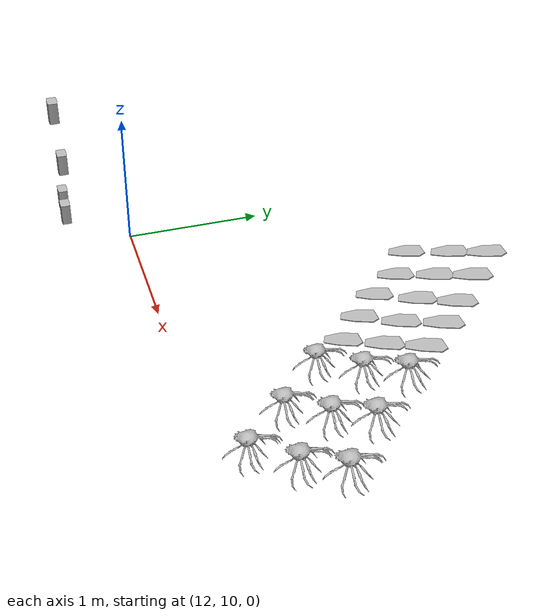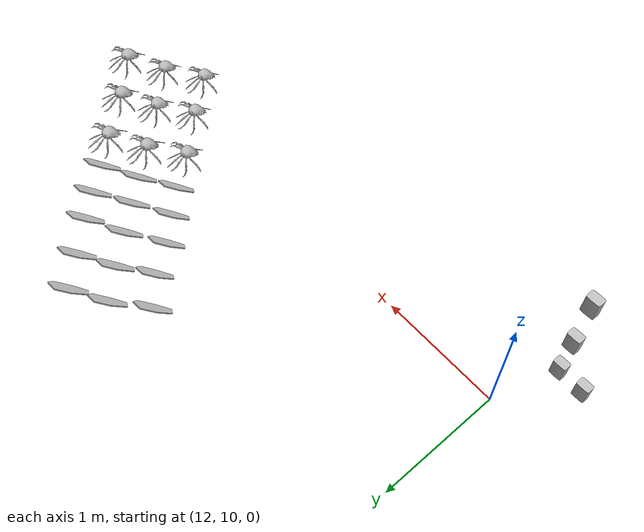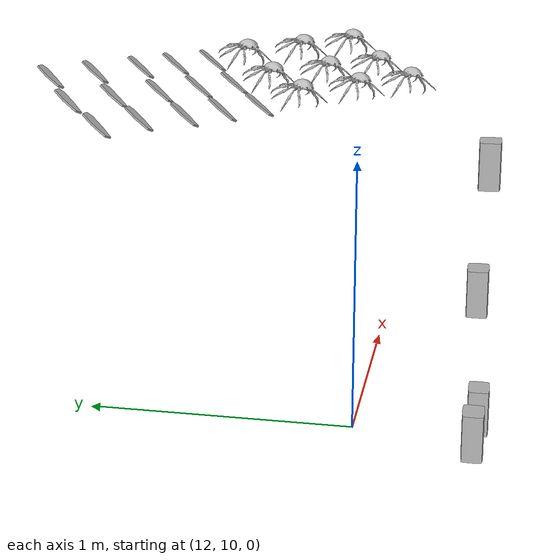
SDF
<sdf version="1.6">
 <world name="default">
  <model name="cod">
   <link name="link_1">
    <inertial>
     <mass>1</mass>
     <inertia>
      <ixx>0.166667</ixx>
      <ixy>0</ixy>
      <ixz>0</ixz>
      <iyy>0.166667</iyy>
      <iyz>0</iyz>
      <izz>0.166667</izz>
     </inertia>
    </inertial>
    <visual name="visual">
     <geometry><mesh><uri>model://cod/meshes/cod.dae</uri><scale>1 1 1</scale></mesh></geometry>
    </visual>
    <collision name="collision">
     <geometry><mesh><uri>model://cod/meshes/cod.dae</uri><scale>1 1 1</scale></mesh></geometry>
     <surface>
      <friction>
       <ode><mu>1</mu><mu2>1</mu2><fdir1>0 0 0</fdir1><slip1>0</slip1><slip2>0</slip2></ode>
       <torsional>
        <coefficient>1</coefficient>
        <patch_radius>0</patch_radius>
        <surface_radius>0</surface_radius>
        <use_patch_radius>1</use_patch_radius>
        <ode><slip>0</slip></ode>
       </torsional>
      </friction>
      <bounce><restitution_coefficient>0</restitution_coefficient><threshold>1e+06</threshold></bounce>
      <contact>
       <collide_without_contact>0</collide_without_contact>
       <collide_without_contact_bitmask>1</collide_without_contact_bitmask>
       <collide_bitmask>1</collide_bitmask>
       <ode>
        <soft_cfm>0</soft_cfm>
        <soft_erp>0.2</soft_erp>
        <kp>1e+13</kp>
        <kd>1</kd>
        <max_vel>0.01</max_vel>
        <min_depth>0</min_depth>
       </ode>
       <bullet>
        <split_impulse>1</split_impulse>
        <split_impulse_penetration_threshold>-0.01</split_impulse_penetration_threshold>
        <soft_cfm>0</soft_cfm>
        <soft_erp>0.2</soft_erp>
        <kp>1e+13</kp>
        <kd>1</kd>
       </bullet>
      </contact>
     </surface>
    </collision>
   </link>
   <static>1</static>
   <pose>14.0109 11.7517 0.843318 0 -0.344885 0.775767</pose>
  </model>
  <model name="cod_clone">
   <link name="link_1">
    <inertial>
     <mass>1</mass>
     <inertia>
      <ixx>0.166667</ixx>
      <ixy>0</ixy>
      <ixz>0</ixz>
      <iyy>0.166667</iyy>
      <iyz>0</iyz>
      <izz>0.166667</izz>
     </inertia>
    </inertial>
    <visual name="visual">
     <geometry><mesh><uri>model://cod/meshes/cod.dae</uri><scale>1 1 1</scale></mesh></geometry>
    </visual>
    <collision name="collision">
     <geometry><mesh><uri>model://cod/meshes/cod.dae</uri><scale>1 1 1</scale></mesh></geometry>
     <surface>
      <friction>
       <ode><mu>1</mu><mu2>1</mu2><fdir1>0 0 0</fdir1><slip1>0</slip1><slip2>0</slip2></ode>
       <torsional>
        <coefficient>1</coefficient>
        <patch_radius>0</patch_radius>
        <surface_radius>0</surface_radius>
        <use_patch_radius>1</use_patch_radius>
        <ode><slip>0</slip></ode>
       </torsional>
      </friction>
      <bounce><restitution_coefficient>0</restitution_coefficient><threshold>1e+06</threshold></bounce>
      <contact>
       <collide_without_contact>0</collide_without_contact>
       <collide_without_contact_bitmask>1</collide_without_contact_bitmask>
       <collide_bitmask>1</collide_bitmask>
       <ode>
        <soft_cfm>0</soft_cfm>
        <soft_erp>0.2</soft_erp>
        <kp>1e+13</kp>
        <kd>1</kd>
        <max_vel>0.01</max_vel>
        <min_depth>0</min_depth>
       </ode>
       <bullet>
        <split_impulse>1</split_impulse>
        <split_impulse_penetration_threshold>-0.01</split_impulse_penetration_threshold>
        <soft_cfm>0</soft_cfm>
        <soft_erp>0.2</soft_erp>
        <kp>1e+13</kp>
        <kd>1</kd>
       </bullet>
      </contact>
     </surface>
    </collision>
   </link>
   <static>1</static>
   <pose>14.2061 11.5664 0.843318 0 -0.344885 0.775767</pose>
  </model>
  <model name="cod_clone_0">
   <link name="link_1">
    <inertial>
     <mass>1</mass>
     <inertia>
      <ixx>0.166667</ixx>
      <ixy>0</ixy>
      <ixz>0</ixz>
      <iyy>0.166667</iyy>
      <iyz>0</iyz>
      <izz>0.166667</izz>
     </inertia>
    </inertial>
    <visual name="visual">
     <geometry><mesh><uri>model://cod/meshes/cod.dae</uri><scale>1 1 1</scale></mesh></geometry>
    </visual>
    <collision name="collision">
     <geometry><mesh><uri>model://cod/meshes/cod.dae</uri><scale>1 1 1</scale></mesh></geometry>
     <surface>
      <friction>
       <ode><mu>1</mu><mu2>1</mu2><fdir1>0 0 0</fdir1><slip1>0</slip1><slip2>0</slip2></ode>
       <torsional>
        <coefficient>1</coefficient>
        <patch_radius>0</patch_radius>
        <surface_radius>0</surface_radius>
        <use_patch_radius>1</use_patch_radius>
        <ode><slip>0</slip></ode>
       </torsional>
      </friction>
      <bounce><restitution_coefficient>0</restitution_coefficient><threshold>1e+06</threshold></bounce>
      <contact>
       <collide_without_contact>0</collide_without_contact>
       <collide_without_contact_bitmask>1</collide_without_contact_bitmask>
       <collide_bitmask>1</collide_bitmask>
       <ode>
        <soft_cfm>0</soft_cfm>
        <soft_erp>0.2</soft_erp>
        <kp>1e+13</kp>
        <kd>1</kd>
        <max_vel>0.01</max_vel>
        <min_depth>0</min_depth>
       </ode>
       <bullet>
        <split_impulse>1</split_impulse>
        <split_impulse_penetration_threshold>-0.01</split_impulse_penetration_threshold>
        <soft_cfm>0</soft_cfm>
        <soft_erp>0.2</soft_erp>
        <kp>1e+13</kp>
        <kd>1</kd>
       </bullet>
      </contact>
     </surface>
    </collision>
   </link>
   <static>1</static>
   <pose>14.3937 11.3707 0.843318 0 -0.344885 0.775767</pose>
  </model>
  <model name="cod_clone_1">
   <link name="link_1">
    <inertial>
     <mass>1</mass>
     <inertia>
      <ixx>0.166667</ixx>
      <ixy>0</ixy>
      <ixz>0</ixz>
      <iyy>0.166667</iyy>
      <iyz>0</iyz>
      <izz>0.166667</izz>
     </inertia>
    </inertial>
    <visual name="visual">
     <geometry><mesh><uri>model://cod/meshes/cod.dae</uri><scale>1 1 1</scale></mesh></geometry>
    </visual>
    <collision name="collision">
     <geometry><mesh><uri>model://cod/meshes/cod.dae</uri><scale>1 1 1</scale></mesh></geometry>
     <surface>
      <friction>
       <ode><mu>1</mu><mu2>1</mu2><fdir1>0 0 0</fdir1><slip1>0</slip1><slip2>0</slip2></ode>
       <torsional>
        <coefficient>1</coefficient>
        <patch_radius>0</patch_radius>
        <surface_radius>0</surface_radius>
        <use_patch_radius>1</use_patch_radius>
        <ode><slip>0</slip></ode>
       </torsional>
      </friction>
      <bounce><restitution_coefficient>0</restitution_coefficient><threshold>1e+06</threshold></bounce>
      <contact>
       <collide_without_contact>0</collide_without_contact>
       <collide_without_contact_bitmask>1</collide_without_contact_bitmask>
       <collide_bitmask>1</collide_bitmask>
       <ode>
        <soft_cfm>0</soft_cfm>
        <soft_erp>0.2</soft_erp>
        <kp>1e+13</kp>
        <kd>1</kd>
        <max_vel>0.01</max_vel>
        <min_depth>0</min_depth>
       </ode>
       <bullet>
        <split_impulse>1</split_impulse>
        <split_impulse_penetration_threshold>-0.01</split_impulse_penetration_threshold>
        <soft_cfm>0</soft_cfm>
        <soft_erp>0.2</soft_erp>
        <kp>1e+13</kp>
        <kd>1</kd>
       </bullet>
      </contact>
     </surface>
    </collision>
   </link>
   <static>1</static>
   <pose>14.5648 11.1946 0.843318 0 -0.344885 0.775767</pose>
  </model>
  <model name="cod_clone_2">
   <link name="link_1">
    <inertial>
     <mass>1</mass>
     <inertia>
      <ixx>0.166667</ixx>
      <ixy>0</ixy>
      <ixz>0</ixz>
      <iyy>0.166667</iyy>
      <iyz>0</iyz>
      <izz>0.166667</izz>
     </inertia>
    </inertial>
    <visual name="visual">
     <geometry><mesh><uri>model://cod/meshes/cod.dae</uri><scale>1 1 1</scale></mesh></geometry>
    </visual>
    <collision name="collision">
     <geometry><mesh><uri>model://cod/meshes/cod.dae</uri><scale>1 1 1</scale></mesh></geometry>
     <surface>
      <friction>
       <ode><mu>1</mu><mu2>1</mu2><fdir1>0 0 0</fdir1><slip1>0</slip1><slip2>0</slip2></ode>
       <torsional>
        <coefficient>1</coefficient>
        <patch_radius>0</patch_radius>
        <surface_radius>0</surface_radius>
        <use_patch_radius>1</use_patch_radius>
        <ode><slip>0</slip></ode>
       </torsional>
      </friction>
      <bounce><restitution_coefficient>0</restitution_coefficient><threshold>1e+06</threshold></bounce>
      <contact>
       <collide_without_contact>0</collide_without_contact>
       <collide_without_contact_bitmask>1</collide_without_contact_bitmask>
       <collide_bitmask>1</collide_bitmask>
       <ode>
        <soft_cfm>0</soft_cfm>
        <soft_erp>0.2</soft_erp>
        <kp>1e+13</kp>
        <kd>1</kd>
        <max_vel>0.01</max_vel>
        <min_depth>0</min_depth>
       </ode>
       <bullet>
        <split_impulse>1</split_impulse>
        <split_impulse_penetration_threshold>-0.01</split_impulse_penetration_threshold>
        <soft_cfm>0</soft_cfm>
        <soft_erp>0.2</soft_erp>
        <kp>1e+13</kp>
        <kd>1</kd>
       </bullet>
      </contact>
     </surface>
    </collision>
   </link>
   <static>1</static>
   <pose>14.722 11.0301 0.843318 0 -0.344885 0.775767</pose>
  </model>
  <model name="cod_clone_3">
   <link name="link_1">
    <inertial>
     <mass>1</mass>
     <inertia>
      <ixx>0.166667</ixx>
      <ixy>0</ixy>
      <ixz>0</ixz>
      <iyy>0.166667</iyy>
      <iyz>0</iyz>
      <izz>0.166667</izz>
     </inertia>
    </inertial>
    <visual name="visual">
     <geometry><mesh><uri>model://cod/meshes/cod.dae</uri><scale>1 1 1</scale></mesh></geometry>
    </visual>
    <collision name="collision">
     <geometry><mesh><uri>model://cod/meshes/cod.dae</uri><scale>1 1 1</scale></mesh></geometry>
     <surface>
      <friction>
       <ode><mu>1</mu><mu2>1</mu2><fdir1>0 0 0</fdir1><slip1>0</slip1><slip2>0</slip2></ode>
       <torsional>
        <coefficient>1</coefficient>
        <patch_radius>0</patch_radius>
        <surface_radius>0</surface_radius>
        <use_patch_radius>1</use_patch_radius>
        <ode><slip>0</slip></ode>
       </torsional>
      </friction>
      <bounce><restitution_coefficient>0</restitution_coefficient><threshold>1e+06</threshold></bounce>
      <contact>
       <collide_without_contact>0</collide_without_contact>
       <collide_without_contact_bitmask>1</collide_without_contact_bitmask>
       <collide_bitmask>1</collide_bitmask>
       <ode>
        <soft_cfm>0</soft_cfm>
        <soft_erp>0.2</soft_erp>
        <kp>1e+13</kp>
        <kd>1</kd>
        <max_vel>0.01</max_vel>
        <min_depth>0</min_depth>
       </ode>
       <bullet>
        <split_impulse>1</split_impulse>
        <split_impulse_penetration_threshold>-0.01</split_impulse_penetration_threshold>
        <soft_cfm>0</soft_cfm>
        <soft_erp>0.2</soft_erp>
        <kp>1e+13</kp>
        <kd>1</kd>
       </bullet>
      </contact>
     </surface>
    </collision>
   </link>
   <static>1</static>
   <pose>14.5904 11.5246 0.936697 0 -0.344885 0.775767</pose>
  </model>
  <model name="cod_clone_3_clone">
   <link name="link_1">
    <inertial>
     <mass>1</mass>
     <inertia>
      <ixx>0.166667</ixx>
      <ixy>0</ixy>
      <ixz>0</ixz>
      <iyy>0.166667</iyy>
      <iyz>0</iyz>
      <izz>0.166667</izz>
     </inertia>
    </inertial>
    <visual name="visual">
     <geometry><mesh><uri>model://cod/meshes/cod.dae</uri><scale>1 1 1</scale></mesh></geometry>
    </visual>
    <collision name="collision">
     <geometry><mesh><uri>model://cod/meshes/cod.dae</uri><scale>1 1 1</scale></mesh></geometry>
     <surface>
      <friction>
       <ode><mu>1</mu><mu2>1</mu2><fdir1>0 0 0</fdir1><slip1>0</slip1><slip2>0</slip2></ode>
       <torsional>
        <coefficient>1</coefficient>
        <patch_radius>0</patch_radius>
        <surface_radius>0</surface_radius>
        <use_patch_radius>1</use_patch_radius>
        <ode><slip>0</slip></ode>
       </torsional>
      </friction>
      <bounce><restitution_coefficient>0</restitution_coefficient><threshold>1e+06</threshold></bounce>
      <contact>
       <collide_without_contact>0</collide_without_contact>
       <collide_without_contact_bitmask>1</collide_without_contact_bitmask>
       <collide_bitmask>1</collide_bitmask>
       <ode>
        <soft_cfm>0</soft_cfm>
        <soft_erp>0.2</soft_erp>
        <kp>1e+13</kp>
        <kd>1</kd>
        <max_vel>0.01</max_vel>
        <min_depth>0</min_depth>
       </ode>
       <bullet>
        <split_impulse>1</split_impulse>
        <split_impulse_penetration_threshold>-0.01</split_impulse_penetration_threshold>
        <soft_cfm>0</soft_cfm>
        <soft_erp>0.2</soft_erp>
        <kp>1e+13</kp>
        <kd>1</kd>
       </bullet>
      </contact>
     </surface>
    </collision>
   </link>
   <static>1</static>
   <pose>14.7478 11.3675 0.936697 0 -0.344885 0.775767</pose>
  </model>
  <model name="cod_clone_3_clone_0">
   <link name="link_1">
    <inertial>
     <mass>1</mass>
     <inertia>
      <ixx>0.166667</ixx>
      <ixy>0</ixy>
      <ixz>0</ixz>
      <iyy>0.166667</iyy>
      <iyz>0</iyz>
      <izz>0.166667</izz>
     </inertia>
    </inertial>
    <visual name="visual">
     <geometry><mesh><uri>model://cod/meshes/cod.dae</uri><scale>1 1 1</scale></mesh></geometry>
    </visual>
    <collision name="collision">
     <geometry><mesh><uri>model://cod/meshes/cod.dae</uri><scale>1 1 1</scale></mesh></geometry>
     <surface>
      <friction>
       <ode><mu>1</mu><mu2>1</mu2><fdir1>0 0 0</fdir1><slip1>0</slip1><slip2>0</slip2></ode>
       <torsional>
        <coefficient>1</coefficient>
        <patch_radius>0</patch_radius>
        <surface_radius>0</surface_radius>
        <use_patch_radius>1</use_patch_radius>
        <ode><slip>0</slip></ode>
       </torsional>
      </friction>
      <bounce><restitution_coefficient>0</restitution_coefficient><threshold>1e+06</threshold></bounce>
      <contact>
       <collide_without_contact>0</collide_without_contact>
       <collide_without_contact_bitmask>1</collide_without_contact_bitmask>
       <collide_bitmask>1</collide_bitmask>
       <ode>
        <soft_cfm>0</soft_cfm>
        <soft_erp>0.2</soft_erp>
        <kp>1e+13</kp>
        <kd>1</kd>
        <max_vel>0.01</max_vel>
        <min_depth>0</min_depth>
       </ode>
       <bullet>
        <split_impulse>1</split_impulse>
        <split_impulse_penetration_threshold>-0.01</split_impulse_penetration_threshold>
        <soft_cfm>0</soft_cfm>
        <soft_erp>0.2</soft_erp>
        <kp>1e+13</kp>
        <kd>1</kd>
       </bullet>
      </contact>
     </surface>
    </collision>
   </link>
   <static>1</static>
   <pose>14.9048 11.192 0.936697 0 -0.344885 0.775767</pose>
  </model>
  <model name="cod_clone_3_clone_1">
   <link name="link_1">
    <inertial>
     <mass>1</mass>
     <inertia>
      <ixx>0.166667</ixx>
      <ixy>0</ixy>
      <ixz>0</ixz>
      <iyy>0.166667</iyy>
      <iyz>0</iyz>
      <izz>0.166667</izz>
     </inertia>
    </inertial>
    <visual name="visual">
     <geometry><mesh><uri>model://cod/meshes/cod.dae</uri><scale>1 1 1</scale></mesh></geometry>
    </visual>
    <collision name="collision">
     <geometry><mesh><uri>model://cod/meshes/cod.dae</uri><scale>1 1 1</scale></mesh></geometry>
     <surface>
      <friction>
       <ode><mu>1</mu><mu2>1</mu2><fdir1>0 0 0</fdir1><slip1>0</slip1><slip2>0</slip2></ode>
       <torsional>
        <coefficient>1</coefficient>
        <patch_radius>0</patch_radius>
        <surface_radius>0</surface_radius>
        <use_patch_radius>1</use_patch_radius>
        <ode><slip>0</slip></ode>
       </torsional>
      </friction>
      <bounce><restitution_coefficient>0</restitution_coefficient><threshold>1e+06</threshold></bounce>
      <contact>
       <collide_without_contact>0</collide_without_contact>
       <collide_without_contact_bitmask>1</collide_without_contact_bitmask>
       <collide_bitmask>1</collide_bitmask>
       <ode>
        <soft_cfm>0</soft_cfm>
        <soft_erp>0.2</soft_erp>
        <kp>1e+13</kp>
        <kd>1</kd>
        <max_vel>0.01</max_vel>
        <min_depth>0</min_depth>
       </ode>
       <bullet>
        <split_impulse>1</split_impulse>
        <split_impulse_penetration_threshold>-0.01</split_impulse_penetration_threshold>
        <soft_cfm>0</soft_cfm>
        <soft_erp>0.2</soft_erp>
        <kp>1e+13</kp>
        <kd>1</kd>
       </bullet>
      </contact>
     </surface>
    </collision>
   </link>
   <static>1</static>
   <pose>14.3832 11.72 0.936697 0 -0.344885 0.775767</pose>
  </model>
  <model name="cod_clone_3_clone_2">
   <link name="link_1">
    <inertial>
     <mass>1</mass>
     <inertia>
      <ixx>0.166667</ixx>
      <ixy>0</ixy>
      <ixz>0</ixz>
      <iyy>0.166667</iyy>
      <iyz>0</iyz>
      <izz>0.166667</izz>
     </inertia>
    </inertial>
    <visual name="visual">
     <geometry><mesh><uri>model://cod/meshes/cod.dae</uri><scale>1 1 1</scale></mesh></geometry>
    </visual>
    <collision name="collision">
     <geometry><mesh><uri>model://cod/meshes/cod.dae</uri><scale>1 1 1</scale></mesh></geometry>
     <surface>
      <friction>
       <ode><mu>1</mu><mu2>1</mu2><fdir1>0 0 0</fdir1><slip1>0</slip1><slip2>0</slip2></ode>
       <torsional>
        <coefficient>1</coefficient>
        <patch_radius>0</patch_radius>
        <surface_radius>0</surface_radius>
        <use_patch_radius>1</use_patch_radius>
        <ode><slip>0</slip></ode>
       </torsional>
      </friction>
      <bounce><restitution_coefficient>0</restitution_coefficient><threshold>1e+06</threshold></bounce>
      <contact>
       <collide_without_contact>0</collide_without_contact>
       <collide_without_contact_bitmask>1</collide_without_contact_bitmask>
       <collide_bitmask>1</collide_bitmask>
       <ode>
        <soft_cfm>0</soft_cfm>
        <soft_erp>0.2</soft_erp>
        <kp>1e+13</kp>
        <kd>1</kd>
        <max_vel>0.01</max_vel>
        <min_depth>0</min_depth>
       </ode>
       <bullet>
        <split_impulse>1</split_impulse>
        <split_impulse_penetration_threshold>-0.01</split_impulse_penetration_threshold>
        <soft_cfm>0</soft_cfm>
        <soft_erp>0.2</soft_erp>
        <kp>1e+13</kp>
        <kd>1</kd>
       </bullet>
      </contact>
     </surface>
    </collision>
   </link>
   <static>1</static>
   <pose>14.1915 11.9034 0.936697 0 -0.344885 0.775767</pose>
  </model>
  <model name="cod_clone_3_clone_3">
   <link name="link_1">
    <inertial>
     <mass>1</mass>
     <inertia>
      <ixx>0.166667</ixx>
      <ixy>0</ixy>
      <ixz>0</ixz>
      <iyy>0.166667</iyy>
      <iyz>0</iyz>
      <izz>0.166667</izz>
     </inertia>
    </inertial>
    <visual name="visual">
     <geometry><mesh><uri>model://cod/meshes/cod.dae</uri><scale>1 1 1</scale></mesh></geometry>
    </visual>
    <collision name="collision">
     <geometry><mesh><uri>model://cod/meshes/cod.dae</uri><scale>1 1 1</scale></mesh></geometry>
     <surface>
      <friction>
       <ode><mu>1</mu><mu2>1</mu2><fdir1>0 0 0</fdir1><slip1>0</slip1><slip2>0</slip2></ode>
       <torsional>
        <coefficient>1</coefficient>
        <patch_radius>0</patch_radius>
        <surface_radius>0</surface_radius>
        <use_patch_radius>1</use_patch_radius>
        <ode><slip>0</slip></ode>
       </torsional>
      </friction>
      <bounce><restitution_coefficient>0</restitution_coefficient><threshold>1e+06</threshold></bounce>
      <contact>
       <collide_without_contact>0</collide_without_contact>
       <collide_without_contact_bitmask>1</collide_without_contact_bitmask>
       <collide_bitmask>1</collide_bitmask>
       <ode>
        <soft_cfm>0</soft_cfm>
        <soft_erp>0.2</soft_erp>
        <kp>1e+13</kp>
        <kd>1</kd>
        <max_vel>0.01</max_vel>
        <min_depth>0</min_depth>
       </ode>
       <bullet>
        <split_impulse>1</split_impulse>
        <split_impulse_penetration_threshold>-0.01</split_impulse_penetration_threshold>
        <soft_cfm>0</soft_cfm>
        <soft_erp>0.2</soft_erp>
        <kp>1e+13</kp>
        <kd>1</kd>
       </bullet>
      </contact>
     </surface>
    </collision>
   </link>
   <static>1</static>
   <pose>14.0362 11.3849 0.760374 0 -0.344885 0.775767</pose>
  </model>
  <model name="cod_clone_3_clone_3_clone">
   <link name="link_1">
    <inertial>
     <mass>1</mass>
     <inertia>
      <ixx>0.166667</ixx>
      <ixy>0</ixy>
      <ixz>0</ixz>
      <iyy>0.166667</iyy>
      <iyz>0</iyz>
      <izz>0.166667</izz>
     </inertia>
    </inertial>
    <visual name="visual">
     <geometry><mesh><uri>model://cod/meshes/cod.dae</uri><scale>1 1 1</scale></mesh></geometry>
    </visual>
    <collision name="collision">
     <geometry><mesh><uri>model://cod/meshes/cod.dae</uri><scale>1 1 1</scale></mesh></geometry>
     <surface>
      <friction>
       <ode><mu>1</mu><mu2>1</mu2><fdir1>0 0 0</fdir1><slip1>0</slip1><slip2>0</slip2></ode>
       <torsional>
        <coefficient>1</coefficient>
        <patch_radius>0</patch_radius>
        <surface_radius>0</surface_radius>
        <use_patch_radius>1</use_patch_radius>
        <ode><slip>0</slip></ode>
       </torsional>
      </friction>
      <bounce><restitution_coefficient>0</restitution_coefficient><threshold>1e+06</threshold></bounce>
      <contact>
       <collide_without_contact>0</collide_without_contact>
       <collide_without_contact_bitmask>1</collide_without_contact_bitmask>
       <collide_bitmask>1</collide_bitmask>
       <ode>
        <soft_cfm>0</soft_cfm>
        <soft_erp>0.2</soft_erp>
        <kp>1e+13</kp>
        <kd>1</kd>
        <max_vel>0.01</max_vel>
        <min_depth>0</min_depth>
       </ode>
       <bullet>
        <split_impulse>1</split_impulse>
        <split_impulse_penetration_threshold>-0.01</split_impulse_penetration_threshold>
        <soft_cfm>0</soft_cfm>
        <soft_erp>0.2</soft_erp>
        <kp>1e+13</kp>
        <kd>1</kd>
       </bullet>
      </contact>
     </surface>
    </collision>
   </link>
   <static>1</static>
   <pose>14.188 11.1847 0.760374 0 -0.344885 0.775767</pose>
  </model>
  <model name="cod_clone_3_clone_3_clone_0">
   <link name="link_1">
    <inertial>
     <mass>1</mass>
     <inertia>
      <ixx>0.166667</ixx>
      <ixy>0</ixy>
      <ixz>0</ixz>
      <iyy>0.166667</iyy>
      <iyz>0</iyz>
      <izz>0.166667</izz>
     </inertia>
    </inertial>
    <visual name="visual">
     <geometry><mesh><uri>model://cod/meshes/cod.dae</uri><scale>1 1 1</scale></mesh></geometry>
    </visual>
    <collision name="collision">
     <geometry><mesh><uri>model://cod/meshes/cod.dae</uri><scale>1 1 1</scale></mesh></geometry>
     <surface>
      <friction>
       <ode><mu>1</mu><mu2>1</mu2><fdir1>0 0 0</fdir1><slip1>0</slip1><slip2>0</slip2></ode>
       <torsional>
        <coefficient>1</coefficient>
        <patch_radius>0</patch_radius>
        <surface_radius>0</surface_radius>
        <use_patch_radius>1</use_patch_radius>
        <ode><slip>0</slip></ode>
       </torsional>
      </friction>
      <bounce><restitution_coefficient>0</restitution_coefficient><threshold>1e+06</threshold></bounce>
      <contact>
       <collide_without_contact>0</collide_without_contact>
       <collide_without_contact_bitmask>1</collide_without_contact_bitmask>
       <collide_bitmask>1</collide_bitmask>
       <ode>
        <soft_cfm>0</soft_cfm>
        <soft_erp>0.2</soft_erp>
        <kp>1e+13</kp>
        <kd>1</kd>
        <max_vel>0.01</max_vel>
        <min_depth>0</min_depth>
       </ode>
       <bullet>
        <split_impulse>1</split_impulse>
        <split_impulse_penetration_threshold>-0.01</split_impulse_penetration_threshold>
        <soft_cfm>0</soft_cfm>
        <soft_erp>0.2</soft_erp>
        <kp>1e+13</kp>
        <kd>1</kd>
       </bullet>
      </contact>
     </surface>
    </collision>
   </link>
   <static>1</static>
   <pose>14.3626 11.0209 0.760374 0 -0.344885 0.775767</pose>
  </model>
  <model name="cod_clone_3_clone_3_clone_1">
   <link name="link_1">
    <inertial>
     <mass>1</mass>
     <inertia>
      <ixx>0.166667</ixx>
      <ixy>0</ixy>
      <ixz>0</ixz>
      <iyy>0.166667</iyy>
      <iyz>0</iyz>
      <izz>0.166667</izz>
     </inertia>
    </inertial>
    <visual name="visual">
     <geometry><mesh><uri>model://cod/meshes/cod.dae</uri><scale>1 1 1</scale></mesh></geometry>
    </visual>
    <collision name="collision">
     <geometry><mesh><uri>model://cod/meshes/cod.dae</uri><scale>1 1 1</scale></mesh></geometry>
     <surface>
      <friction>
       <ode><mu>1</mu><mu2>1</mu2><fdir1>0 0 0</fdir1><slip1>0</slip1><slip2>0</slip2></ode>
       <torsional>
        <coefficient>1</coefficient>
        <patch_radius>0</patch_radius>
        <surface_radius>0</surface_radius>
        <use_patch_radius>1</use_patch_radius>
        <ode><slip>0</slip></ode>
       </torsional>
      </friction>
      <bounce><restitution_coefficient>0</restitution_coefficient><threshold>1e+06</threshold></bounce>
      <contact>
       <collide_without_contact>0</collide_without_contact>
       <collide_without_contact_bitmask>1</collide_without_contact_bitmask>
       <collide_bitmask>1</collide_bitmask>
       <ode>
        <soft_cfm>0</soft_cfm>
        <soft_erp>0.2</soft_erp>
        <kp>1e+13</kp>
        <kd>1</kd>
        <max_vel>0.01</max_vel>
        <min_depth>0</min_depth>
       </ode>
       <bullet>
        <split_impulse>1</split_impulse>
        <split_impulse_penetration_threshold>-0.01</split_impulse_penetration_threshold>
        <soft_cfm>0</soft_cfm>
        <soft_erp>0.2</soft_erp>
        <kp>1e+13</kp>
        <kd>1</kd>
       </bullet>
      </contact>
     </surface>
    </collision>
   </link>
   <static>1</static>
   <pose>14.5373 10.8545 0.760374 0 -0.344885 0.775767</pose>
  </model>
  <model name="cod_clone_3_clone_3_clone_2">
   <link name="link_1">
    <inertial>
     <mass>1</mass>
     <inertia>
      <ixx>0.166667</ixx>
      <ixy>0</ixy>
      <ixz>0</ixz>
      <iyy>0.166667</iyy>
      <iyz>0</iyz>
      <izz>0.166667</izz>
     </inertia>
    </inertial>
    <visual name="visual">
     <geometry><mesh><uri>model://cod/meshes/cod.dae</uri><scale>1 1 1</scale></mesh></geometry>
    </visual>
    <collision name="collision">
     <geometry><mesh><uri>model://cod/meshes/cod.dae</uri><scale>1 1 1</scale></mesh></geometry>
     <surface>
      <friction>
       <ode><mu>1</mu><mu2>1</mu2><fdir1>0 0 0</fdir1><slip1>0</slip1><slip2>0</slip2></ode>
       <torsional>
        <coefficient>1</coefficient>
        <patch_radius>0</patch_radius>
        <surface_radius>0</surface_radius>
        <use_patch_radius>1</use_patch_radius>
        <ode><slip>0</slip></ode>
       </torsional>
      </friction>
      <bounce><restitution_coefficient>0</restitution_coefficient><threshold>1e+06</threshold></bounce>
      <contact>
       <collide_without_contact>0</collide_without_contact>
       <collide_without_contact_bitmask>1</collide_without_contact_bitmask>
       <collide_bitmask>1</collide_bitmask>
       <ode>
        <soft_cfm>0</soft_cfm>
        <soft_erp>0.2</soft_erp>
        <kp>1e+13</kp>
        <kd>1</kd>
        <max_vel>0.01</max_vel>
        <min_depth>0</min_depth>
       </ode>
       <bullet>
        <split_impulse>1</split_impulse>
        <split_impulse_penetration_threshold>-0.01</split_impulse_penetration_threshold>
        <soft_cfm>0</soft_cfm>
        <soft_erp>0.2</soft_erp>
        <kp>1e+13</kp>
        <kd>1</kd>
       </bullet>
      </contact>
     </surface>
    </collision>
   </link>
   <static>1</static>
   <pose>13.8275 11.5452 0.760374 0 -0.344885 0.775767</pose>
  </model>
  <model name="crab">
   <link name="link_3">
    <inertial>
     <mass>1</mass>
     <inertia>
      <ixx>0.166667</ixx>
      <ixy>0</ixy>
      <ixz>0</ixz>
      <iyy>0.166667</iyy>
      <iyz>0</iyz>
      <izz>0.166667</izz>
     </inertia>
    </inertial>
    <visual name="visual">
     <geometry><mesh><uri>model://crab/meshes/crab.dae</uri><scale>1 1 1</scale></mesh></geometry>
    </visual>
    <collision name="collision">
     <geometry><mesh><uri>model://crab/meshes/crab.dae</uri><scale>1 1 1</scale></mesh></geometry>
     <surface>
      <friction>
       <ode><mu>1</mu><mu2>1</mu2><fdir1>0 0 0</fdir1><slip1>0</slip1><slip2>0</slip2></ode>
       <torsional>
        <coefficient>1</coefficient>
        <patch_radius>0</patch_radius>
        <surface_radius>0</surface_radius>
        <use_patch_radius>1</use_patch_radius>
        <ode><slip>0</slip></ode>
       </torsional>
      </friction>
      <bounce><restitution_coefficient>0</restitution_coefficient><threshold>1e+06</threshold></bounce>
      <contact>
       <collide_without_contact>0</collide_without_contact>
       <collide_without_contact_bitmask>1</collide_without_contact_bitmask>
       <collide_bitmask>1</collide_bitmask>
       <ode>
        <soft_cfm>0</soft_cfm>
        <soft_erp>0.2</soft_erp>
        <kp>1e+13</kp>
        <kd>1</kd>
        <max_vel>0.01</max_vel>
        <min_depth>0</min_depth>
       </ode>
       <bullet>
        <split_impulse>1</split_impulse>
        <split_impulse_penetration_threshold>-0.01</split_impulse_penetration_threshold>
        <soft_cfm>0</soft_cfm>
        <soft_erp>0.2</soft_erp>
        <kp>1e+13</kp>
        <kd>1</kd>
       </bullet>
      </contact>
     </surface>
    </collision>
   </link>
   <static>1</static>
   <pose>14.587 10.7623 0.739129 0 0.295362 -2.32577</pose>
  </model>
  <model name="crab_clone">
   <link name="link_3">
    <inertial>
     <mass>1</mass>
     <inertia>
      <ixx>0.166667</ixx>
      <ixy>0</ixy>
      <ixz>0</ixz>
      <iyy>0.166667</iyy>
      <iyz>0</iyz>
      <izz>0.166667</izz>
     </inertia>
    </inertial>
    <visual name="visual">
     <geometry><mesh><uri>model://crab/meshes/crab.dae</uri><scale>1 1 1</scale></mesh></geometry>
    </visual>
    <collision name="collision">
     <geometry><mesh><uri>model://crab/meshes/crab.dae</uri><scale>1 1 1</scale></mesh></geometry>
     <surface>
      <friction>
       <ode><mu>1</mu><mu2>1</mu2><fdir1>0 0 0</fdir1><slip1>0</slip1><slip2>0</slip2></ode>
       <torsional>
        <coefficient>1</coefficient>
        <patch_radius>0</patch_radius>
        <surface_radius>0</surface_radius>
        <use_patch_radius>1</use_patch_radius>
        <ode><slip>0</slip></ode>
       </torsional>
      </friction>
      <bounce><restitution_coefficient>0</restitution_coefficient><threshold>1e+06</threshold></bounce>
      <contact>
       <collide_without_contact>0</collide_without_contact>
       <collide_without_contact_bitmask>1</collide_without_contact_bitmask>
       <collide_bitmask>1</collide_bitmask>
       <ode>
        <soft_cfm>0</soft_cfm>
        <soft_erp>0.2</soft_erp>
        <kp>1e+13</kp>
        <kd>1</kd>
        <max_vel>0.01</max_vel>
        <min_depth>0</min_depth>
       </ode>
       <bullet>
        <split_impulse>1</split_impulse>
        <split_impulse_penetration_threshold>-0.01</split_impulse_penetration_threshold>
        <soft_cfm>0</soft_cfm>
        <soft_erp>0.2</soft_erp>
        <kp>1e+13</kp>
        <kd>1</kd>
       </bullet>
      </contact>
     </surface>
    </collision>
   </link>
   <static>1</static>
   <pose>14.8754 10.4809 0.739129 0 0.295362 -2.32577</pose>
  </model>
  <model name="crab_clone_0">
   <link name="link_3">
    <inertial>
     <mass>1</mass>
     <inertia>
      <ixx>0.166667</ixx>
      <ixy>0</ixy>
      <ixz>0</ixz>
      <iyy>0.166667</iyy>
      <iyz>0</iyz>
      <izz>0.166667</izz>
     </inertia>
    </inertial>
    <visual name="visual">
     <geometry><mesh><uri>model://crab/meshes/crab.dae</uri><scale>1 1 1</scale></mesh></geometry>
    </visual>
    <collision name="collision">
     <geometry><mesh><uri>model://crab/meshes/crab.dae</uri><scale>1 1 1</scale></mesh></geometry>
     <surface>
      <friction>
       <ode><mu>1</mu><mu2>1</mu2><fdir1>0 0 0</fdir1><slip1>0</slip1><slip2>0</slip2></ode>
       <torsional>
        <coefficient>1</coefficient>
        <patch_radius>0</patch_radius>
        <surface_radius>0</surface_radius>
        <use_patch_radius>1</use_patch_radius>
        <ode><slip>0</slip></ode>
       </torsional>
      </friction>
      <bounce><restitution_coefficient>0</restitution_coefficient><threshold>1e+06</threshold></bounce>
      <contact>
       <collide_without_contact>0</collide_without_contact>
       <collide_without_contact_bitmask>1</collide_without_contact_bitmask>
       <collide_bitmask>1</collide_bitmask>
       <ode>
        <soft_cfm>0</soft_cfm>
        <soft_erp>0.2</soft_erp>
        <kp>1e+13</kp>
        <kd>1</kd>
        <max_vel>0.01</max_vel>
        <min_depth>0</min_depth>
       </ode>
       <bullet>
        <split_impulse>1</split_impulse>
        <split_impulse_penetration_threshold>-0.01</split_impulse_penetration_threshold>
        <soft_cfm>0</soft_cfm>
        <soft_erp>0.2</soft_erp>
        <kp>1e+13</kp>
        <kd>1</kd>
       </bullet>
      </contact>
     </surface>
    </collision>
   </link>
   <static>1</static>
   <pose>15.1264 10.2106 0.739129 0 0.295362 -2.32577</pose>
  </model>
  <model name="crab_clone_1">
   <link name="link_3">
    <inertial>
     <mass>1</mass>
     <inertia>
      <ixx>0.166667</ixx>
      <ixy>0</ixy>
      <ixz>0</ixz>
      <iyy>0.166667</iyy>
      <iyz>0</iyz>
      <izz>0.166667</izz>
     </inertia>
    </inertial>
    <visual name="visual">
     <geometry><mesh><uri>model://crab/meshes/crab.dae</uri><scale>1 1 1</scale></mesh></geometry>
    </visual>
    <collision name="collision">
     <geometry><mesh><uri>model://crab/meshes/crab.dae</uri><scale>1 1 1</scale></mesh></geometry>
     <surface>
      <friction>
       <ode><mu>1</mu><mu2>1</mu2><fdir1>0 0 0</fdir1><slip1>0</slip1><slip2>0</slip2></ode>
       <torsional>
        <coefficient>1</coefficient>
        <patch_radius>0</patch_radius>
        <surface_radius>0</surface_radius>
        <use_patch_radius>1</use_patch_radius>
        <ode><slip>0</slip></ode>
       </torsional>
      </friction>
      <bounce><restitution_coefficient>0</restitution_coefficient><threshold>1e+06</threshold></bounce>
      <contact>
       <collide_without_contact>0</collide_without_contact>
       <collide_without_contact_bitmask>1</collide_without_contact_bitmask>
       <collide_bitmask>1</collide_bitmask>
       <ode>
        <soft_cfm>0</soft_cfm>
        <soft_erp>0.2</soft_erp>
        <kp>1e+13</kp>
        <kd>1</kd>
        <max_vel>0.01</max_vel>
        <min_depth>0</min_depth>
       </ode>
       <bullet>
        <split_impulse>1</split_impulse>
        <split_impulse_penetration_threshold>-0.01</split_impulse_penetration_threshold>
        <soft_cfm>0</soft_cfm>
        <soft_erp>0.2</soft_erp>
        <kp>1e+13</kp>
        <kd>1</kd>
       </bullet>
      </contact>
     </surface>
    </collision>
   </link>
   <static>1</static>
   <pose>14.7855 10.96 0.798294 0 0.295362 -2.32577</pose>
  </model>
  <model name="crab_clone_1_clone">
   <link name="link_3">
    <inertial>
     <mass>1</mass>
     <inertia>
      <ixx>0.166667</ixx>
      <ixy>0</ixy>
      <ixz>0</ixz>
      <iyy>0.166667</iyy>
      <iyz>0</iyz>
      <izz>0.166667</izz>
     </inertia>
    </inertial>
    <visual name="visual">
     <geometry><mesh><uri>model://crab/meshes/crab.dae</uri><scale>1 1 1</scale></mesh></geometry>
    </visual>
    <collision name="collision">
     <geometry><mesh><uri>model://crab/meshes/crab.dae</uri><scale>1 1 1</scale></mesh></geometry>
     <surface>
      <friction>
       <ode><mu>1</mu><mu2>1</mu2><fdir1>0 0 0</fdir1><slip1>0</slip1><slip2>0</slip2></ode>
       <torsional>
        <coefficient>1</coefficient>
        <patch_radius>0</patch_radius>
        <surface_radius>0</surface_radius>
        <use_patch_radius>1</use_patch_radius>
        <ode><slip>0</slip></ode>
       </torsional>
      </friction>
      <bounce><restitution_coefficient>0</restitution_coefficient><threshold>1e+06</threshold></bounce>
      <contact>
       <collide_without_contact>0</collide_without_contact>
       <collide_without_contact_bitmask>1</collide_without_contact_bitmask>
       <collide_bitmask>1</collide_bitmask>
       <ode>
        <soft_cfm>0</soft_cfm>
        <soft_erp>0.2</soft_erp>
        <kp>1e+13</kp>
        <kd>1</kd>
        <max_vel>0.01</max_vel>
        <min_depth>0</min_depth>
       </ode>
       <bullet>
        <split_impulse>1</split_impulse>
        <split_impulse_penetration_threshold>-0.01</split_impulse_penetration_threshold>
        <soft_cfm>0</soft_cfm>
        <soft_erp>0.2</soft_erp>
        <kp>1e+13</kp>
        <kd>1</kd>
       </bullet>
      </contact>
     </surface>
    </collision>
   </link>
   <static>1</static>
   <pose>15.0667 10.6768 0.798294 0 0.295362 -2.32577</pose>
  </model>
  <model name="crab_clone_1_clone_0">
   <link name="link_3">
    <inertial>
     <mass>1</mass>
     <inertia>
      <ixx>0.166667</ixx>
      <ixy>0</ixy>
      <ixz>0</ixz>
      <iyy>0.166667</iyy>
      <iyz>0</iyz>
      <izz>0.166667</izz>
     </inertia>
    </inertial>
    <visual name="visual">
     <geometry><mesh><uri>model://crab/meshes/crab.dae</uri><scale>1 1 1</scale></mesh></geometry>
    </visual>
    <collision name="collision">
     <geometry><mesh><uri>model://crab/meshes/crab.dae</uri><scale>1 1 1</scale></mesh></geometry>
     <surface>
      <friction>
       <ode><mu>1</mu><mu2>1</mu2><fdir1>0 0 0</fdir1><slip1>0</slip1><slip2>0</slip2></ode>
       <torsional>
        <coefficient>1</coefficient>
        <patch_radius>0</patch_radius>
        <surface_radius>0</surface_radius>
        <use_patch_radius>1</use_patch_radius>
        <ode><slip>0</slip></ode>
       </torsional>
      </friction>
      <bounce><restitution_coefficient>0</restitution_coefficient><threshold>1e+06</threshold></bounce>
      <contact>
       <collide_without_contact>0</collide_without_contact>
       <collide_without_contact_bitmask>1</collide_without_contact_bitmask>
       <collide_bitmask>1</collide_bitmask>
       <ode>
        <soft_cfm>0</soft_cfm>
        <soft_erp>0.2</soft_erp>
        <kp>1e+13</kp>
        <kd>1</kd>
        <max_vel>0.01</max_vel>
        <min_depth>0</min_depth>
       </ode>
       <bullet>
        <split_impulse>1</split_impulse>
        <split_impulse_penetration_threshold>-0.01</split_impulse_penetration_threshold>
        <soft_cfm>0</soft_cfm>
        <soft_erp>0.2</soft_erp>
        <kp>1e+13</kp>
        <kd>1</kd>
       </bullet>
      </contact>
     </surface>
    </collision>
   </link>
   <static>1</static>
   <pose>15.3415 10.4147 0.798294 0 0.295362 -2.32577</pose>
  </model>
  <model name="crab_clone_1_clone_1">
   <link name="link_3">
    <inertial>
     <mass>1</mass>
     <inertia>
      <ixx>0.166667</ixx>
      <ixy>0</ixy>
      <ixz>0</ixz>
      <iyy>0.166667</iyy>
      <iyz>0</iyz>
      <izz>0.166667</izz>
     </inertia>
    </inertial>
    <visual name="visual">
     <geometry><mesh><uri>model://crab/meshes/crab.dae</uri><scale>1 1 1</scale></mesh></geometry>
    </visual>
    <collision name="collision">
     <geometry><mesh><uri>model://crab/meshes/crab.dae</uri><scale>1 1 1</scale></mesh></geometry>
     <surface>
      <friction>
       <ode><mu>1</mu><mu2>1</mu2><fdir1>0 0 0</fdir1><slip1>0</slip1><slip2>0</slip2></ode>
       <torsional>
        <coefficient>1</coefficient>
        <patch_radius>0</patch_radius>
        <surface_radius>0</surface_radius>
        <use_patch_radius>1</use_patch_radius>
        <ode><slip>0</slip></ode>
       </torsional>
      </friction>
      <bounce><restitution_coefficient>0</restitution_coefficient><threshold>1e+06</threshold></bounce>
      <contact>
       <collide_without_contact>0</collide_without_contact>
       <collide_without_contact_bitmask>1</collide_without_contact_bitmask>
       <collide_bitmask>1</collide_bitmask>
       <ode>
        <soft_cfm>0</soft_cfm>
        <soft_erp>0.2</soft_erp>
        <kp>1e+13</kp>
        <kd>1</kd>
        <max_vel>0.01</max_vel>
        <min_depth>0</min_depth>
       </ode>
       <bullet>
        <split_impulse>1</split_impulse>
        <split_impulse_penetration_threshold>-0.01</split_impulse_penetration_threshold>
        <soft_cfm>0</soft_cfm>
        <soft_erp>0.2</soft_erp>
        <kp>1e+13</kp>
        <kd>1</kd>
       </bullet>
      </contact>
     </surface>
    </collision>
   </link>
   <static>1</static>
   <pose>15.5373 10.5985 0.896471 0 0.295362 -2.32577</pose>
  </model>
  <model name="crab_clone_1_clone_1_clone">
   <link name="link_3">
    <inertial>
     <mass>1</mass>
     <inertia>
      <ixx>0.166667</ixx>
      <ixy>0</ixy>
      <ixz>0</ixz>
      <iyy>0.166667</iyy>
      <iyz>0</iyz>
      <izz>0.166667</izz>
     </inertia>
    </inertial>
    <visual name="visual">
     <geometry><mesh><uri>model://crab/meshes/crab.dae</uri><scale>1 1 1</scale></mesh></geometry>
    </visual>
    <collision name="collision">
     <geometry><mesh><uri>model://crab/meshes/crab.dae</uri><scale>1 1 1</scale></mesh></geometry>
     <surface>
      <friction>
       <ode><mu>1</mu><mu2>1</mu2><fdir1>0 0 0</fdir1><slip1>0</slip1><slip2>0</slip2></ode>
       <torsional>
        <coefficient>1</coefficient>
        <patch_radius>0</patch_radius>
        <surface_radius>0</surface_radius>
        <use_patch_radius>1</use_patch_radius>
        <ode><slip>0</slip></ode>
       </torsional>
      </friction>
      <bounce><restitution_coefficient>0</restitution_coefficient><threshold>1e+06</threshold></bounce>
      <contact>
       <collide_without_contact>0</collide_without_contact>
       <collide_without_contact_bitmask>1</collide_without_contact_bitmask>
       <collide_bitmask>1</collide_bitmask>
       <ode>
        <soft_cfm>0</soft_cfm>
        <soft_erp>0.2</soft_erp>
        <kp>1e+13</kp>
        <kd>1</kd>
        <max_vel>0.01</max_vel>
        <min_depth>0</min_depth>
       </ode>
       <bullet>
        <split_impulse>1</split_impulse>
        <split_impulse_penetration_threshold>-0.01</split_impulse_penetration_threshold>
        <soft_cfm>0</soft_cfm>
        <soft_erp>0.2</soft_erp>
        <kp>1e+13</kp>
        <kd>1</kd>
       </bullet>
      </contact>
     </surface>
    </collision>
   </link>
   <static>1</static>
   <pose>15.2414 10.854 0.896471 0 0.295362 -2.32577</pose>
  </model>
  <model name="crab_clone_1_clone_1_clone_0">
   <link name="link_3">
    <inertial>
     <mass>1</mass>
     <inertia>
      <ixx>0.166667</ixx>
      <ixy>0</ixy>
      <ixz>0</ixz>
      <iyy>0.166667</iyy>
      <iyz>0</iyz>
      <izz>0.166667</izz>
     </inertia>
    </inertial>
    <visual name="visual">
     <geometry><mesh><uri>model://crab/meshes/crab.dae</uri><scale>1 1 1</scale></mesh></geometry>
    </visual>
    <collision name="collision">
     <geometry><mesh><uri>model://crab/meshes/crab.dae</uri><scale>1 1 1</scale></mesh></geometry>
     <surface>
      <friction>
       <ode><mu>1</mu><mu2>1</mu2><fdir1>0 0 0</fdir1><slip1>0</slip1><slip2>0</slip2></ode>
       <torsional>
        <coefficient>1</coefficient>
        <patch_radius>0</patch_radius>
        <surface_radius>0</surface_radius>
        <use_patch_radius>1</use_patch_radius>
        <ode><slip>0</slip></ode>
       </torsional>
      </friction>
      <bounce><restitution_coefficient>0</restitution_coefficient><threshold>1e+06</threshold></bounce>
      <contact>
       <collide_without_contact>0</collide_without_contact>
       <collide_without_contact_bitmask>1</collide_without_contact_bitmask>
       <collide_bitmask>1</collide_bitmask>
       <ode>
        <soft_cfm>0</soft_cfm>
        <soft_erp>0.2</soft_erp>
        <kp>1e+13</kp>
        <kd>1</kd>
        <max_vel>0.01</max_vel>
        <min_depth>0</min_depth>
       </ode>
       <bullet>
        <split_impulse>1</split_impulse>
        <split_impulse_penetration_threshold>-0.01</split_impulse_penetration_threshold>
        <soft_cfm>0</soft_cfm>
        <soft_erp>0.2</soft_erp>
        <kp>1e+13</kp>
        <kd>1</kd>
       </bullet>
      </contact>
     </surface>
    </collision>
   </link>
   <static>1</static>
   <pose>14.9729 11.1382 0.896471 0 0.295362 -2.32577</pose>
  </model>
  <model name="flour">
   <link name="link_5">
    <inertial>
     <mass>1</mass>
     <inertia>
      <ixx>0.166667</ixx>
      <ixy>0</ixy>
      <ixz>0</ixz>
      <iyy>0.166667</iyy>
      <iyz>0</iyz>
      <izz>0.166667</izz>
     </inertia>
    </inertial>
    <pose>4e-06 -0 0 0 -0 0</pose>
    <visual name="visual">
     <geometry><mesh><uri>model://flour/meshes/flour.dae</uri><scale>1 1 1</scale></mesh></geometry>
    </visual>
    <collision name="collision">
     <geometry><mesh><uri>model://flour/meshes/flour.dae</uri><scale>1 1 1</scale></mesh></geometry>
     <surface>
      <friction>
       <ode><mu>1</mu><mu2>1</mu2><fdir1>0 0 0</fdir1><slip1>0</slip1><slip2>0</slip2></ode>
       <torsional>
        <coefficient>1</coefficient>
        <patch_radius>0</patch_radius>
        <surface_radius>0</surface_radius>
        <use_patch_radius>1</use_patch_radius>
        <ode><slip>0</slip></ode>
       </torsional>
      </friction>
      <bounce><restitution_coefficient>0</restitution_coefficient><threshold>1e+06</threshold></bounce>
      <contact>
       <collide_without_contact>0</collide_without_contact>
       <collide_without_contact_bitmask>1</collide_without_contact_bitmask>
       <collide_bitmask>1</collide_bitmask>
       <ode>
        <soft_cfm>0</soft_cfm>
        <soft_erp>0.2</soft_erp>
        <kp>1e+13</kp>
        <kd>1</kd>
        <max_vel>0.01</max_vel>
        <min_depth>0</min_depth>
       </ode>
       <bullet>
        <split_impulse>1</split_impulse>
        <split_impulse_penetration_threshold>-0.01</split_impulse_penetration_threshold>
        <soft_cfm>0</soft_cfm>
        <soft_erp>0.2</soft_erp>
        <kp>1e+13</kp>
        <kd>1</kd>
       </bullet>
      </contact>
     </surface>
    </collision>
   </link>
   <static>1</static>
   <pose>11.8592 9.50818 0.975556 0 -0 0</pose>
  </model>
  <model name="flour_clone">
   <link name="link_5">
    <inertial>
     <mass>1</mass>
     <inertia>
      <ixx>0.166667</ixx>
      <ixy>0</ixy>
      <ixz>0</ixz>
      <iyy>0.166667</iyy>
      <iyz>0</iyz>
      <izz>0.166667</izz>
     </inertia>
    </inertial>
    <pose>4e-06 -0 0 0 -0 0</pose>
    <visual name="visual">
     <geometry><mesh><uri>model://flour/meshes/flour.dae</uri><scale>1 1 1</scale></mesh></geometry>
    </visual>
    <collision name="collision">
     <geometry><mesh><uri>model://flour/meshes/flour.dae</uri><scale>1 1 1</scale></mesh></geometry>
     <surface>
      <friction>
       <ode><mu>1</mu><mu2>1</mu2><fdir1>0 0 0</fdir1><slip1>0</slip1><slip2>0</slip2></ode>
       <torsional>
        <coefficient>1</coefficient>
        <patch_radius>0</patch_radius>
        <surface_radius>0</surface_radius>
        <use_patch_radius>1</use_patch_radius>
        <ode><slip>0</slip></ode>
       </torsional>
      </friction>
      <bounce><restitution_coefficient>0</restitution_coefficient><threshold>1e+06</threshold></bounce>
      <contact>
       <collide_without_contact>0</collide_without_contact>
       <collide_without_contact_bitmask>1</collide_without_contact_bitmask>
       <collide_bitmask>1</collide_bitmask>
       <ode>
        <soft_cfm>0</soft_cfm>
        <soft_erp>0.2</soft_erp>
        <kp>1e+13</kp>
        <kd>1</kd>
        <max_vel>0.01</max_vel>
        <min_depth>0</min_depth>
       </ode>
       <bullet>
        <split_impulse>1</split_impulse>
        <split_impulse_penetration_threshold>-0.01</split_impulse_penetration_threshold>
        <soft_cfm>0</soft_cfm>
        <soft_erp>0.2</soft_erp>
        <kp>1e+13</kp>
        <kd>1</kd>
       </bullet>
      </contact>
     </surface>
    </collision>
   </link>
   <static>1</static>
   <pose>11.6477 9.52467 0.109897 0 -0 0</pose>
  </model>
  <model name="flour_clone_0">
   <link name="link_5">
    <inertial>
     <mass>1</mass>
     <inertia>
      <ixx>0.166667</ixx>
      <ixy>0</ixy>
      <ixz>0</ixz>
      <iyy>0.166667</iyy>
      <iyz>0</iyz>
      <izz>0.166667</izz>
     </inertia>
    </inertial>
    <pose>4e-06 -0 0 0 -0 0</pose>
    <visual name="visual">
     <geometry><mesh><uri>model://flour/meshes/flour.dae</uri><scale>1 1 1</scale></mesh></geometry>
    </visual>
    <collision name="collision">
     <geometry><mesh><uri>model://flour/meshes/flour.dae</uri><scale>1 1 1</scale></mesh></geometry>
     <surface>
      <friction>
       <ode><mu>1</mu><mu2>1</mu2><fdir1>0 0 0</fdir1><slip1>0</slip1><slip2>0</slip2></ode>
       <torsional>
        <coefficient>1</coefficient>
        <patch_radius>0</patch_radius>
        <surface_radius>0</surface_radius>
        <use_patch_radius>1</use_patch_radius>
        <ode><slip>0</slip></ode>
       </torsional>
      </friction>
      <bounce><restitution_coefficient>0</restitution_coefficient><threshold>1e+06</threshold></bounce>
      <contact>
       <collide_without_contact>0</collide_without_contact>
       <collide_without_contact_bitmask>1</collide_without_contact_bitmask>
       <collide_bitmask>1</collide_bitmask>
       <ode>
        <soft_cfm>0</soft_cfm>
        <soft_erp>0.2</soft_erp>
        <kp>1e+13</kp>
        <kd>1</kd>
        <max_vel>0.01</max_vel>
        <min_depth>0</min_depth>
       </ode>
       <bullet>
        <split_impulse>1</split_impulse>
        <split_impulse_penetration_threshold>-0.01</split_impulse_penetration_threshold>
        <soft_cfm>0</soft_cfm>
        <soft_erp>0.2</soft_erp>
        <kp>1e+13</kp>
        <kd>1</kd>
       </bullet>
      </contact>
     </surface>
    </collision>
   </link>
   <static>1</static>
   <pose>11.859 9.51275 0.109897 0 -0 0</pose>
  </model>
  <model name="flour_clone_2">
   <link name="link_5">
    <inertial>
     <mass>1</mass>
     <inertia>
      <ixx>0.166667</ixx>
      <ixy>0</ixy>
      <ixz>0</ixz>
      <iyy>0.166667</iyy>
      <iyz>0</iyz>
      <izz>0.166667</izz>
     </inertia>
    </inertial>
    <pose>4e-06 -0 0 0 -0 0</pose>
    <visual name="visual">
     <geometry><mesh><uri>model://flour/meshes/flour.dae</uri><scale>1 1 1</scale></mesh></geometry>
    </visual>
    <collision name="collision">
     <geometry><mesh><uri>model://flour/meshes/flour.dae</uri><scale>1 1 1</scale></mesh></geometry>
     <surface>
      <friction>
       <ode><mu>1</mu><mu2>1</mu2><fdir1>0 0 0</fdir1><slip1>0</slip1><slip2>0</slip2></ode>
       <torsional>
        <coefficient>1</coefficient>
        <patch_radius>0</patch_radius>
        <surface_radius>0</surface_radius>
        <use_patch_radius>1</use_patch_radius>
        <ode><slip>0</slip></ode>
       </torsional>
      </friction>
      <bounce><restitution_coefficient>0</restitution_coefficient><threshold>1e+06</threshold></bounce>
      <contact>
       <collide_without_contact>0</collide_without_contact>
       <collide_without_contact_bitmask>1</collide_without_contact_bitmask>
       <collide_bitmask>1</collide_bitmask>
       <ode>
        <soft_cfm>0</soft_cfm>
        <soft_erp>0.2</soft_erp>
        <kp>1e+13</kp>
        <kd>1</kd>
        <max_vel>0.01</max_vel>
        <min_depth>0</min_depth>
       </ode>
       <bullet>
        <split_impulse>1</split_impulse>
        <split_impulse_penetration_threshold>-0.01</split_impulse_penetration_threshold>
        <soft_cfm>0</soft_cfm>
        <soft_erp>0.2</soft_erp>
        <kp>1e+13</kp>
        <kd>1</kd>
       </bullet>
      </contact>
     </surface>
    </collision>
   </link>
   <static>1</static>
   <pose>11.8526 9.53136 0.539296 0 -0 0</pose>
  </model>
 </world>
</sdf>
